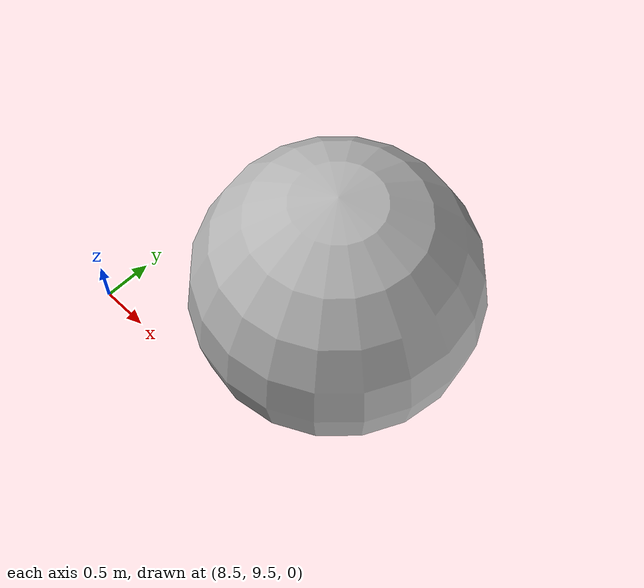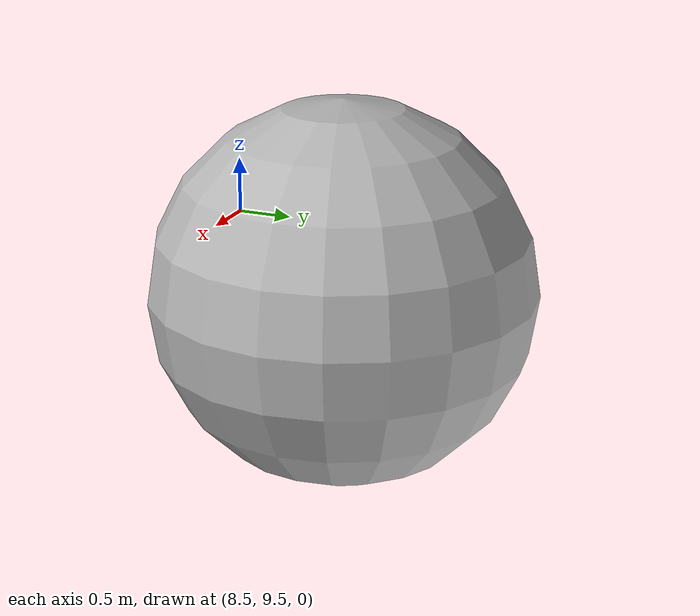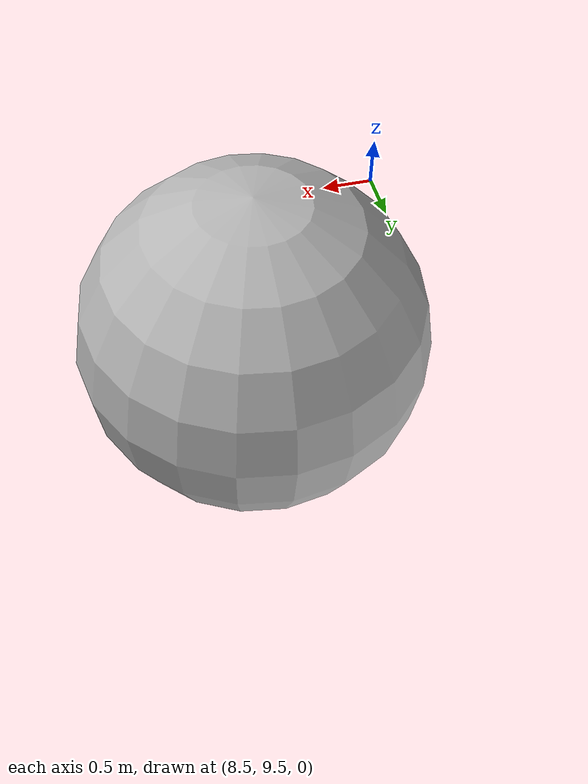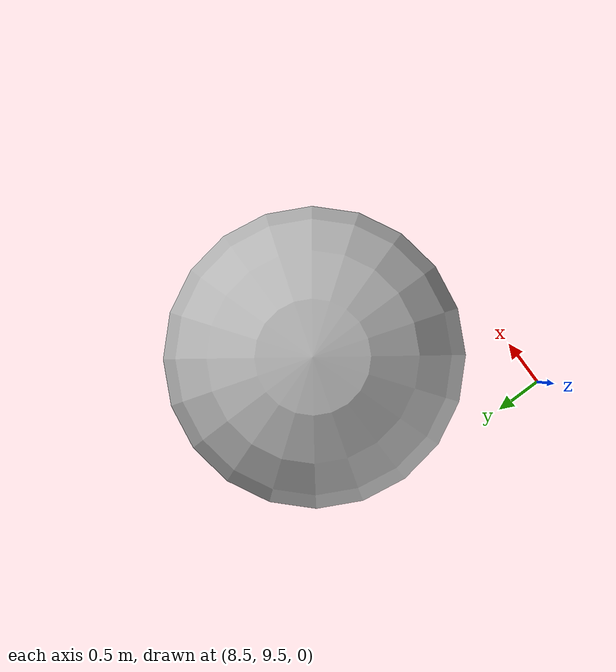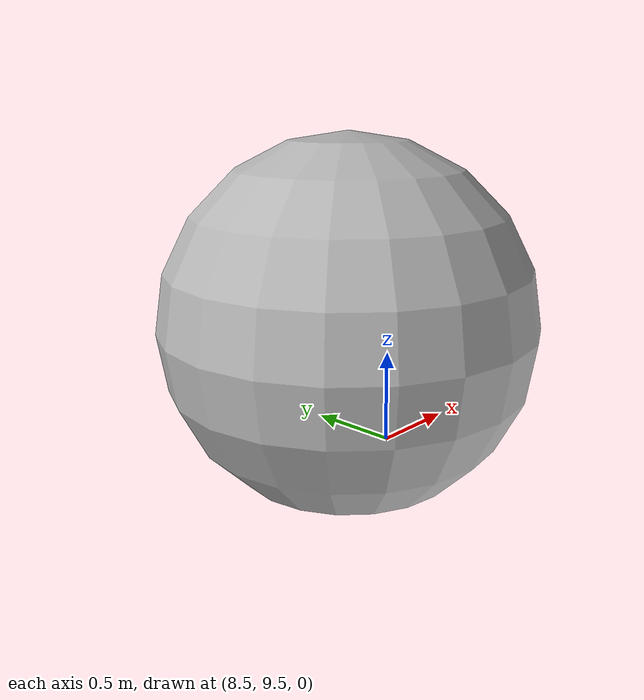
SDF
<?xml version='1.0'?>
<sdf version='1.7'>
  <world name='default'>
    <model name='ParentModel'>
      <model name='M1'>
        <model name='test_model_with_frames'>
          <frame name='F1'>
            <pose>0.12345 0 0 0 0 0</pose>
          </frame>
          <frame name='F2'>
            <pose relative_to='F1'>0 1.2344999999999999 0 0 0 0</pose>
          </frame>
          <link name='L1'>
            <pose relative_to='F1'>0 0 0 0 0 0</pose>
            <visual name='V1'>
              <pose relative_to='F2'>0 0 0 0 0 0</pose>
              <geometry>
                <sphere>
                  <radius>1.5707963267948966</radius>
                </sphere>
              </geometry>
            </visual>
            <collision name='C1'>
              <pose relative_to='__model__'>0 0 0 0 0 0</pose>
              <geometry>
                <sphere>
                  <radius>0.78539816339744828</radius>
                </sphere>
              </geometry>
            </collision>
          </link>
          <link name='L2'>
            <pose relative_to='F1'>1 0 0 0 0 0</pose>
          </link>
          <link name='L3'>
            <pose relative_to='L2'>0 1 0 0 0 0</pose>
          </link>
          <link name='L4'>
            <pose relative_to='__model__'>0 0 1 0 0 0</pose>
          </link>
          <joint name='J1' type='universal'>
            <pose relative_to='L1'>0 0 0 0 0 0</pose>
            <parent>L1</parent>
            <child>L2</child>
            <axis>
              <xyz expressed_in='F2'>0 0 1</xyz>
            </axis>
            <axis2>
              <xyz expressed_in='F2'>1 0 0</xyz>
            </axis2>
          </joint>
          <joint name='J2' type='revolute'>
            <pose>0 0 1 0 0 0</pose>
            <parent>L2</parent>
            <child>L3</child>
            <axis>
              <xyz expressed_in='__model__'>0 0 1</xyz>
            </axis>
          </joint>
          <joint name='J3' type='fixed'>
            <pose relative_to='__model__'>1 0 1 0 0 0</pose>
            <parent>L3</parent>
            <child>L4</child>
          </joint>
          <model name='M2'>
            <pose relative_to='F1'>1 0 0 0 0 0</pose>
            <link name='L5'>
              <pose>1 0 0 0 0 0</pose>
            </link>
          </model>
          <pose>0 10 0 0 0 0</pose>
        </model>
        <pose>10 0 0 0 0 0</pose>
      </model>
    </model>
  </world>
</sdf>
